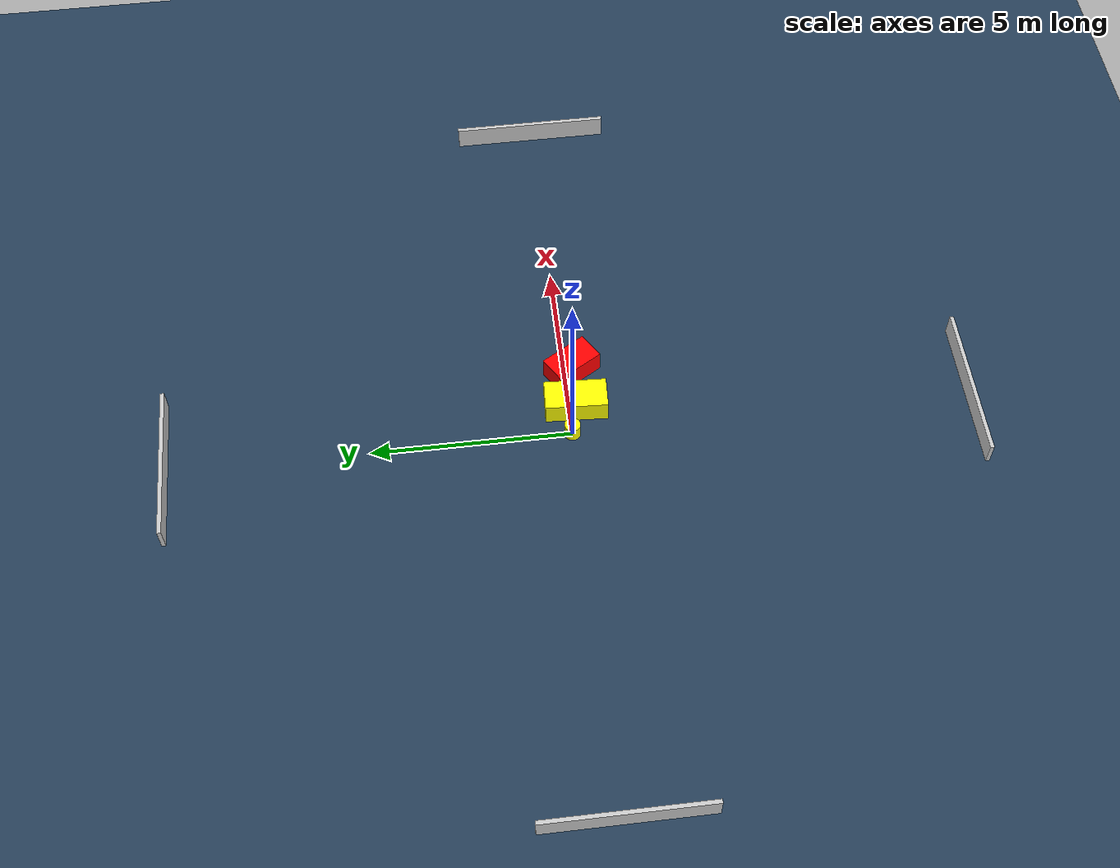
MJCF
<?xml version="1.0" ?>
<mujoco model="generated_environment">
  <option timestep="0.01" integrator="RK4" cone="elliptic"/>
  <default>
    <geom density="1"/>
  </default>
  <asset>
    <texture builtin="gradient" height="3072" name="skybox" rgb1="0.3 0.5 0.7" rgb2="0 0 0" type="skybox" width="512"/>
    <texture builtin="checker" height="300" name="groundplane" rgb1="0.2 0.3 0.4" rgb2="0.1 0.2 0.3" type="2d" width="300"/>
    <material name="groundplane" reflectance="0.2" texrepeat="5 5" texture="groundplane"/>
  </asset>
  <worldbody>
    <light dir="0 0 -1" directional="true" pos="0 0 1.5"/>
    <geom condim="3" friction="0.5 0.005 0.001" material="groundplane" name="floor" pos="0 0 0" size="0 0 0.05" type="plane"/>
    <body name="walls">
      <geom name="wall_1" condim="4" pos="-10.0 0.0 0.3" rgba="0.800000011920929 0.800000011920929 0.800000011920929 1.0" size="0.05 2.0 0.3" type="box"/>
      <geom name="wall_2" condim="4" pos="10.0 0.0 0.3" rgba="0.800000011920929 0.800000011920929 0.800000011920929 1.0" size="0.05 2.0 0.3" type="box"/>
      <geom name="wall_3" condim="4" pos="0.0 -10.0 0.3" rgba="0.800000011920929 0.800000011920929 0.800000011920929 1.0" size="2.0 0.05 0.3" type="box"/>
      <geom name="wall_4" condim="4" pos="0.0 10.0 0.3" rgba="0.800000011920929 0.800000011920929 0.800000011920929 1.0" size="2.0 0.05 0.3" type="box"/>
    </body>
    <body name="robot">
      <joint name="joint_x" type="slide" pos="0 0 0" axis="1 0 0"/>
      <joint name="joint_y" type="slide" pos="0 0 0" axis="0 1 0"/>
      <geom name="robot" type="cylinder" pos="0.0 0.0 0.2" size="0.2 0.2 0.0" mass="5.0" friction="1.0 0.005 0.0001" condim="4" rgba="1.0 1.0 0.0 1.0"/>
    </body>
    <body name="obstacle_1_movable">
      <geom name="obstacle_1_movable" condim="4" pos="0.7822889876072974 -0.17233088926507412 0.3" euler="0 0 87.1971155663462" friction="0.0 0.005 0.001" rgba="1.0 1.0 0.0 1.0" size="0.7786923414382896 0.3947701747769644 0.3" type="box" mass="0.1"/>
      <joint type="free"/>
    </body>
    <body name="obstacle_2_static">
      <geom name="obstacle_2_static" condim="4" pos="1.8812739772834703 -0.20081359030936322 0.3" euler="0 0 301.1953234093514" friction="0.0 0.005 0.001" rgba="1.0 0.0 0.0 1.0" size="0.6286977603104629 0.35720875334209073 0.3" type="box"/>
    </body>
  </worldbody>
  <actuator>
    <motor name="actuator_x" joint="joint_x" gear="1" ctrlrange="-1 1"/>
    <motor name="actuator_y" joint="joint_y" gear="1" ctrlrange="-1 1"/>
  </actuator>
</mujoco>
